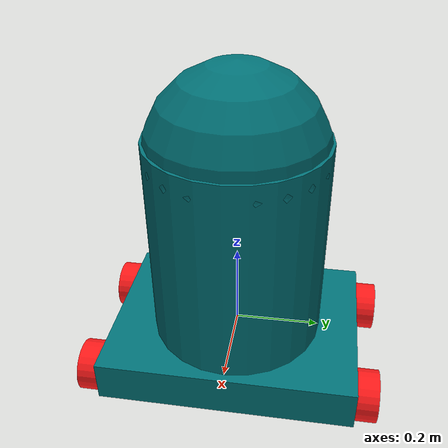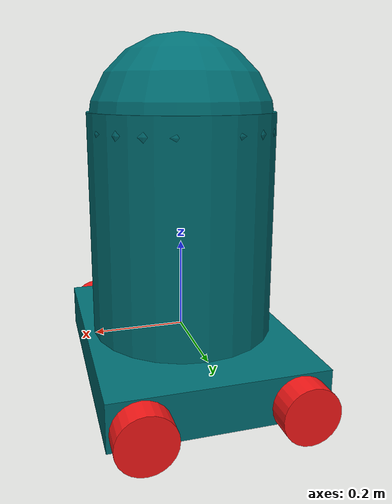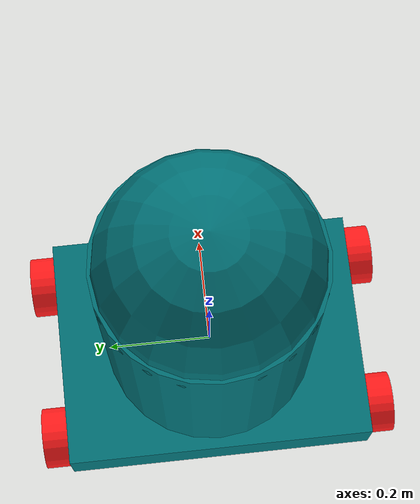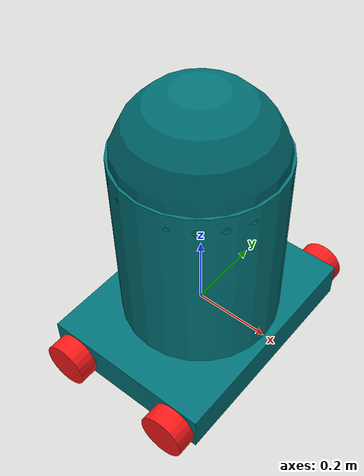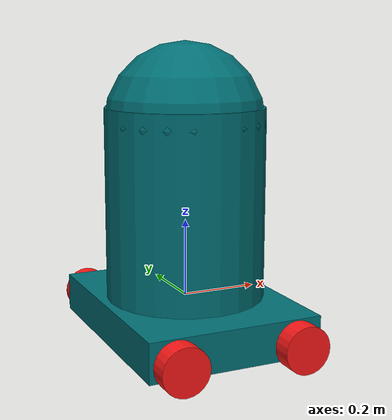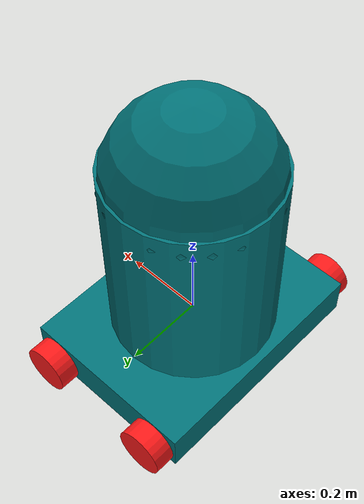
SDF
<?xml version='1.0'?>
<sdf version='1.7'>
  <model name='secondrobot'>
    <model name='robot_ozone'>
      <link name='link_0'>
        <inertial>
          <mass>1</mass>
          <inertia>
            <ixx>0.145833</ixx>
            <ixy>0</ixy>
            <ixz>0</ixz>
            <iyy>0.145833</iyy>
            <iyz>0</iyz>
            <izz>0.125</izz>
          </inertia>
          <pose>0 0 0 0 -0 0</pose>
        </inertial>
        <pose>0.158652 0.325006 -0.061319 0 -0 0</pose>
        <gravity>1</gravity>
        <self_collide>0</self_collide>
        <kinematic>0</kinematic>
        <enable_wind>0</enable_wind>
        <visual name='visual'>
          <pose>0 0 0 1.5707 -0 0</pose>
          <geometry>
            <cylinder>
              <radius>0.06</radius>
              <length>0.05</length>
            </cylinder>
          </geometry>
          <material>
            <lighting>1</lighting>
            <script>
              <uri>file://media/materials/scripts/gazebo.material</uri>
              <name>Gazebo/Grey</name>
            </script>
            <shader type='pixel'>
              <normal_map>__default__</normal_map>
            </shader>
            <ambient>1 0.1 0.1 1</ambient>
            <diffuse>0.7 0.7 0.7 1</diffuse>
            <specular>0.01 0.01 0.01 1</specular>
            <emissive>0 0 0 1</emissive>
          </material>
          <transparency>0</transparency>
          <cast_shadows>1</cast_shadows>
        </visual>
        <collision name='collision'>
          <laser_retro>0</laser_retro>
          <max_contacts>10</max_contacts>
          <pose>0 0 0 1.5707 -0 0</pose>
          <geometry>
            <cylinder>
              <radius>0.06</radius>
              <length>0.05</length>
            </cylinder>
          </geometry>
          <surface>
            <friction>
              <ode>
                <mu>1</mu>
                <mu2>1</mu2>
                <fdir1>0 0 0</fdir1>
                <slip1>0</slip1>
                <slip2>0</slip2>
              </ode>
              <torsional>
                <coefficient>1</coefficient>
                <patch_radius>0</patch_radius>
                <surface_radius>0</surface_radius>
                <use_patch_radius>1</use_patch_radius>
                <ode>
                  <slip>0</slip>
                </ode>
              </torsional>
            </friction>
            <bounce>
              <restitution_coefficient>0</restitution_coefficient>
              <threshold>1e+06</threshold>
            </bounce>
            <contact>
              <collide_without_contact>0</collide_without_contact>
              <collide_without_contact_bitmask>1</collide_without_contact_bitmask>
              <collide_bitmask>1</collide_bitmask>
              <ode>
                <soft_cfm>0</soft_cfm>
                <soft_erp>0.2</soft_erp>
                <kp>1e+13</kp>
                <kd>1</kd>
                <max_vel>0.01</max_vel>
                <min_depth>0</min_depth>
              </ode>
              <bullet>
                <split_impulse>1</split_impulse>
                <split_impulse_penetration_threshold>-0.01</split_impulse_penetration_threshold>
                <soft_cfm>0</soft_cfm>
                <soft_erp>0.2</soft_erp>
                <kp>1e+13</kp>
                <kd>1</kd>
              </bullet>
            </contact>
          </surface>
        </collision>
      </link>
      <link name='link_0_clone'>
        <inertial>
          <mass>1</mass>
          <inertia>
            <ixx>0.145833</ixx>
            <ixy>0</ixy>
            <ixz>0</ixz>
            <iyy>0.145833</iyy>
            <iyz>0</iyz>
            <izz>0.125</izz>
          </inertia>
          <pose>0 0 0 0 -0 0</pose>
        </inertial>
        <pose>-0.159423 0.325006 -0.061319 0 -0 0</pose>
        <gravity>1</gravity>
        <self_collide>0</self_collide>
        <kinematic>0</kinematic>
        <enable_wind>0</enable_wind>
        <visual name='visual'>
          <pose>0 0 0 1.5707 -0 0</pose>
          <geometry>
            <cylinder>
              <radius>0.06</radius>
              <length>0.05</length>
            </cylinder>
          </geometry>
          <material>
            <lighting>1</lighting>
            <script>
              <uri>file://media/materials/scripts/gazebo.material</uri>
              <name>Gazebo/Grey</name>
            </script>
            <shader type='pixel'>
              <normal_map>__default__</normal_map>
            </shader>
            <ambient>1 0.1 0.1 1</ambient>
            <diffuse>0.7 0.7 0.7 1</diffuse>
            <specular>0.01 0.01 0.01 1</specular>
            <emissive>0 0 0 1</emissive>
          </material>
          <transparency>0</transparency>
          <cast_shadows>1</cast_shadows>
        </visual>
        <collision name='collision'>
          <laser_retro>0</laser_retro>
          <max_contacts>10</max_contacts>
          <pose>0 0 0 1.5707 -0 0</pose>
          <geometry>
            <cylinder>
              <radius>0.06</radius>
              <length>0.05</length>
            </cylinder>
          </geometry>
          <surface>
            <friction>
              <ode>
                <mu>1</mu>
                <mu2>1</mu2>
                <fdir1>0 0 0</fdir1>
                <slip1>0</slip1>
                <slip2>0</slip2>
              </ode>
              <torsional>
                <coefficient>1</coefficient>
                <patch_radius>0</patch_radius>
                <surface_radius>0</surface_radius>
                <use_patch_radius>1</use_patch_radius>
                <ode>
                  <slip>0</slip>
                </ode>
              </torsional>
            </friction>
            <bounce>
              <restitution_coefficient>0</restitution_coefficient>
              <threshold>1e+06</threshold>
            </bounce>
            <contact>
              <collide_without_contact>0</collide_without_contact>
              <collide_without_contact_bitmask>1</collide_without_contact_bitmask>
              <collide_bitmask>1</collide_bitmask>
              <ode>
                <soft_cfm>0</soft_cfm>
                <soft_erp>0.2</soft_erp>
                <kp>1e+13</kp>
                <kd>1</kd>
                <max_vel>0.01</max_vel>
                <min_depth>0</min_depth>
              </ode>
              <bullet>
                <split_impulse>1</split_impulse>
                <split_impulse_penetration_threshold>-0.01</split_impulse_penetration_threshold>
                <soft_cfm>0</soft_cfm>
                <soft_erp>0.2</soft_erp>
                <kp>1e+13</kp>
                <kd>1</kd>
              </bullet>
            </contact>
          </surface>
        </collision>
      </link>
      <link name='link_0_clone_0'>
        <inertial>
          <mass>1</mass>
          <inertia>
            <ixx>0.145833</ixx>
            <ixy>0</ixy>
            <ixz>0</ixz>
            <iyy>0.145833</iyy>
            <iyz>0</iyz>
            <izz>0.125</izz>
          </inertia>
          <pose>0 0 0 0 -0 0</pose>
        </inertial>
        <pose>0.159453 -0.325006 -0.061319 0 -0 0</pose>
        <gravity>1</gravity>
        <self_collide>0</self_collide>
        <kinematic>0</kinematic>
        <enable_wind>0</enable_wind>
        <visual name='visual'>
          <pose>0 0 0 1.5707 -0 0</pose>
          <geometry>
            <cylinder>
              <radius>0.06</radius>
              <length>0.05</length>
            </cylinder>
          </geometry>
          <material>
            <lighting>1</lighting>
            <script>
              <uri>file://media/materials/scripts/gazebo.material</uri>
              <name>Gazebo/Grey</name>
            </script>
            <shader type='pixel'>
              <normal_map>__default__</normal_map>
            </shader>
            <ambient>1 0.1 0.1 1</ambient>
            <diffuse>0.7 0.7 0.7 1</diffuse>
            <specular>0.01 0.01 0.01 1</specular>
            <emissive>0 0 0 1</emissive>
          </material>
          <transparency>0</transparency>
          <cast_shadows>1</cast_shadows>
        </visual>
        <collision name='collision'>
          <laser_retro>0</laser_retro>
          <max_contacts>10</max_contacts>
          <pose>0 0 0 1.5707 -0 0</pose>
          <geometry>
            <cylinder>
              <radius>0.06</radius>
              <length>0.05</length>
            </cylinder>
          </geometry>
          <surface>
            <friction>
              <ode>
                <mu>1</mu>
                <mu2>1</mu2>
                <fdir1>0 0 0</fdir1>
                <slip1>0</slip1>
                <slip2>0</slip2>
              </ode>
              <torsional>
                <coefficient>1</coefficient>
                <patch_radius>0</patch_radius>
                <surface_radius>0</surface_radius>
                <use_patch_radius>1</use_patch_radius>
                <ode>
                  <slip>0</slip>
                </ode>
              </torsional>
            </friction>
            <bounce>
              <restitution_coefficient>0</restitution_coefficient>
              <threshold>1e+06</threshold>
            </bounce>
            <contact>
              <collide_without_contact>0</collide_without_contact>
              <collide_without_contact_bitmask>1</collide_without_contact_bitmask>
              <collide_bitmask>1</collide_bitmask>
              <ode>
                <soft_cfm>0</soft_cfm>
                <soft_erp>0.2</soft_erp>
                <kp>1e+13</kp>
                <kd>1</kd>
                <max_vel>0.01</max_vel>
                <min_depth>0</min_depth>
              </ode>
              <bullet>
                <split_impulse>1</split_impulse>
                <split_impulse_penetration_threshold>-0.01</split_impulse_penetration_threshold>
                <soft_cfm>0</soft_cfm>
                <soft_erp>0.2</soft_erp>
                <kp>1e+13</kp>
                <kd>1</kd>
              </bullet>
            </contact>
          </surface>
        </collision>
      </link>
      <link name='link_0_clone_1'>
        <inertial>
          <mass>1</mass>
          <inertia>
            <ixx>0.145833</ixx>
            <ixy>0</ixy>
            <ixz>0</ixz>
            <iyy>0.145833</iyy>
            <iyz>0</iyz>
            <izz>0.125</izz>
          </inertia>
          <pose>0 0 0 0 -0 0</pose>
        </inertial>
        <pose>-0.156109 -0.325006 -0.061319 0 -0 0</pose>
        <gravity>1</gravity>
        <self_collide>0</self_collide>
        <kinematic>0</kinematic>
        <enable_wind>0</enable_wind>
        <visual name='visual'>
          <pose>0 0 0 1.5707 -0 0</pose>
          <geometry>
            <cylinder>
              <radius>0.06</radius>
              <length>0.05</length>
            </cylinder>
          </geometry>
          <material>
            <lighting>1</lighting>
            <script>
              <uri>file://media/materials/scripts/gazebo.material</uri>
              <name>Gazebo/Grey</name>
            </script>
            <shader type='pixel'>
              <normal_map>__default__</normal_map>
            </shader>
            <ambient>1 0.1 0.1 1</ambient>
            <diffuse>0.7 0.7 0.7 1</diffuse>
            <specular>0.01 0.01 0.01 1</specular>
            <emissive>0 0 0 1</emissive>
          </material>
          <transparency>0</transparency>
          <cast_shadows>1</cast_shadows>
        </visual>
        <collision name='collision'>
          <laser_retro>0</laser_retro>
          <max_contacts>10</max_contacts>
          <pose>0 0 0 1.5707 -0 0</pose>
          <geometry>
            <cylinder>
              <radius>0.06</radius>
              <length>0.05</length>
            </cylinder>
          </geometry>
          <surface>
            <friction>
              <ode>
                <mu>1</mu>
                <mu2>1</mu2>
                <fdir1>0 0 0</fdir1>
                <slip1>0</slip1>
                <slip2>0</slip2>
              </ode>
              <torsional>
                <coefficient>1</coefficient>
                <patch_radius>0</patch_radius>
                <surface_radius>0</surface_radius>
                <use_patch_radius>1</use_patch_radius>
                <ode>
                  <slip>0</slip>
                </ode>
              </torsional>
            </friction>
            <bounce>
              <restitution_coefficient>0</restitution_coefficient>
              <threshold>1e+06</threshold>
            </bounce>
            <contact>
              <collide_without_contact>0</collide_without_contact>
              <collide_without_contact_bitmask>1</collide_without_contact_bitmask>
              <collide_bitmask>1</collide_bitmask>
              <ode>
                <soft_cfm>0</soft_cfm>
                <soft_erp>0.2</soft_erp>
                <kp>1e+13</kp>
                <kd>1</kd>
                <max_vel>0.01</max_vel>
                <min_depth>0</min_depth>
              </ode>
              <bullet>
                <split_impulse>1</split_impulse>
                <split_impulse_penetration_threshold>-0.01</split_impulse_penetration_threshold>
                <soft_cfm>0</soft_cfm>
                <soft_erp>0.2</soft_erp>
                <kp>1e+13</kp>
                <kd>1</kd>
              </bullet>
            </contact>
          </surface>
        </collision>
      </link>
      <link name='link_1'>
        <inertial>
          <mass>1</mass>
          <inertia>
            <ixx>0.145833</ixx>
            <ixy>0</ixy>
            <ixz>0</ixz>
            <iyy>0.145833</iyy>
            <iyz>0</iyz>
            <izz>0.125</izz>
          </inertia>
          <pose>0 0 0 0 -0 0</pose>
        </inertial>
        <pose>-0.000857 -0 0.341759 0 -0 0</pose>
        <gravity>1</gravity>
        <self_collide>0</self_collide>
        <kinematic>0</kinematic>
        <enable_wind>0</enable_wind>
        <visual name='visual'>
          <pose>0 0 -0.1 0 -0 0</pose>
          <geometry>
            <cylinder>
              <radius>0.205</radius>
              <length>0.5</length>
            </cylinder>
          </geometry>
          <material>
            <lighting>1</lighting>
            <script>
              <uri>file://media/materials/scripts/gazebo.material</uri>
              <name>Gazebo/Grey</name>
            </script>
            <shader type='pixel'>
              <normal_map>__default__</normal_map>
            </shader>
            <ambient>0 0.45 0.47 1</ambient>
            <diffuse>0.7 0.7 0.7 1</diffuse>
            <specular>0.01 0.01 0.01 1</specular>
            <emissive>0 0 0 1</emissive>
          </material>
          <transparency>0</transparency>
          <cast_shadows>1</cast_shadows>
        </visual>
        <collision name='collision'>
          <laser_retro>0</laser_retro>
          <max_contacts>10</max_contacts>
          <pose>0 0 -0.1 0 -0 0</pose>
          <geometry>
            <cylinder>
              <radius>0.205</radius>
              <length>0.5</length>
            </cylinder>
          </geometry>
          <surface>
            <friction>
              <ode>
                <mu>1</mu>
                <mu2>1</mu2>
                <fdir1>0 0 0</fdir1>
                <slip1>0</slip1>
                <slip2>0</slip2>
              </ode>
              <torsional>
                <coefficient>1</coefficient>
                <patch_radius>0</patch_radius>
                <surface_radius>0</surface_radius>
                <use_patch_radius>1</use_patch_radius>
                <ode>
                  <slip>0</slip>
                </ode>
              </torsional>
            </friction>
            <bounce>
              <restitution_coefficient>0</restitution_coefficient>
              <threshold>1e+06</threshold>
            </bounce>
            <contact>
              <collide_without_contact>0</collide_without_contact>
              <collide_without_contact_bitmask>1</collide_without_contact_bitmask>
              <collide_bitmask>1</collide_bitmask>
              <ode>
                <soft_cfm>0</soft_cfm>
                <soft_erp>0.2</soft_erp>
                <kp>1e+13</kp>
                <kd>1</kd>
                <max_vel>0.01</max_vel>
                <min_depth>0</min_depth>
              </ode>
              <bullet>
                <split_impulse>1</split_impulse>
                <split_impulse_penetration_threshold>-0.01</split_impulse_penetration_threshold>
                <soft_cfm>0</soft_cfm>
                <soft_erp>0.2</soft_erp>
                <kp>1e+13</kp>
                <kd>1</kd>
              </bullet>
            </contact>
          </surface>
        </collision>
      </link>
      <link name='link_2'>
        <inertial>
          <mass>1</mass>
          <inertia>
            <ixx>0.1</ixx>
            <ixy>0</ixy>
            <ixz>0</ixz>
            <iyy>0.1</iyy>
            <iyz>0</iyz>
            <izz>0.1</izz>
          </inertia>
          <pose>0 0 0 0 -0 0</pose>
        </inertial>
        <pose>-0.000857 -0 -0.048241 0 -0 0</pose>
        <gravity>1</gravity>
        <self_collide>0</self_collide>
        <kinematic>0</kinematic>
        <enable_wind>0</enable_wind>
        <visual name='visual'>
          <pose>0 0 0.5 0 -0 0</pose>
          <geometry>
            <sphere>
              <radius>0.205</radius>
            </sphere>
          </geometry>
          <material>
            <lighting>1</lighting>
            <script>
              <uri>file://media/materials/scripts/gazebo.material</uri>
              <name>Gazebo/Grey</name>
            </script>
            <shader type='pixel'>
              <normal_map>__default__</normal_map>
            </shader>
            <emissive>0 0 0 1</emissive>
            <ambient>0 0.45 0.47 1</ambient>
            <diffuse>0.7 0.7 0.7 1</diffuse>
            <specular>0.01 0.01 0.01 1</specular>
          </material>
          <transparency>0</transparency>
          <cast_shadows>1</cast_shadows>
        </visual>
        <collision name='collision'>
          <laser_retro>0</laser_retro>
          <max_contacts>10</max_contacts>
          <pose>0 0 0.5 0 -0 0</pose>
          <geometry>
            <sphere>
              <radius>0.205</radius>
            </sphere>
          </geometry>
          <surface>
            <friction>
              <ode>
                <mu>1</mu>
                <mu2>1</mu2>
                <fdir1>0 0 0</fdir1>
                <slip1>0</slip1>
                <slip2>0</slip2>
              </ode>
              <torsional>
                <coefficient>1</coefficient>
                <patch_radius>0</patch_radius>
                <surface_radius>0</surface_radius>
                <use_patch_radius>1</use_patch_radius>
                <ode>
                  <slip>0</slip>
                </ode>
              </torsional>
            </friction>
            <bounce>
              <restitution_coefficient>0</restitution_coefficient>
              <threshold>1e+06</threshold>
            </bounce>
            <contact>
              <collide_without_contact>0</collide_without_contact>
              <collide_without_contact_bitmask>1</collide_without_contact_bitmask>
              <collide_bitmask>1</collide_bitmask>
              <ode>
                <soft_cfm>0</soft_cfm>
                <soft_erp>0.2</soft_erp>
                <kp>1e+13</kp>
                <kd>1</kd>
                <max_vel>0.01</max_vel>
                <min_depth>0</min_depth>
              </ode>
              <bullet>
                <split_impulse>1</split_impulse>
                <split_impulse_penetration_threshold>-0.01</split_impulse_penetration_threshold>
                <soft_cfm>0</soft_cfm>
                <soft_erp>0.2</soft_erp>
                <kp>1e+13</kp>
                <kd>1</kd>
              </bullet>
            </contact>
          </surface>
        </collision>
      </link>
      <link name='link_3'>
        <inertial>
          <mass>1</mass>
          <inertia>
            <ixx>0.166667</ixx>
            <ixy>0</ixy>
            <ixz>0</ixz>
            <iyy>0.166667</iyy>
            <iyz>0</iyz>
            <izz>0.166667</izz>
          </inertia>
          <pose>0 0 0 0 -0 0</pose>
        </inertial>
        <pose>-0.000857 -0 -0.048241 0 -0 0</pose>
        <gravity>1</gravity>
        <self_collide>0</self_collide>
        <kinematic>0</kinematic>
        <enable_wind>0</enable_wind>
        <visual name='visual'>
          <pose>0 0 0 0 -0 0</pose>
          <geometry>
            <box>
              <size>0.45 0.6 0.1</size>
            </box>
          </geometry>
          <material>
            <lighting>1</lighting>
            <script>
              <uri>file://media/materials/scripts/gazebo.material</uri>
              <name>Gazebo/Grey</name>
            </script>
            <shader type='pixel'>
              <normal_map>__default__</normal_map>
            </shader>
            <ambient>0 0.45 0.47 1</ambient>
            <diffuse>0.7 0.7 0.7 1</diffuse>
            <specular>0.01 0.01 0.01 1</specular>
            <emissive>0 0 0 1</emissive>
          </material>
          <transparency>0</transparency>
          <cast_shadows>1</cast_shadows>
        </visual>
        <collision name='collision'>
          <laser_retro>0</laser_retro>
          <max_contacts>10</max_contacts>
          <pose>0 0 0 0 -0 0</pose>
          <geometry>
            <box>
              <size>0.45 0.6 0.1</size>
            </box>
          </geometry>
          <surface>
            <friction>
              <ode>
                <mu>1</mu>
                <mu2>1</mu2>
                <fdir1>0 0 0</fdir1>
                <slip1>0</slip1>
                <slip2>0</slip2>
              </ode>
              <torsional>
                <coefficient>1</coefficient>
                <patch_radius>0</patch_radius>
                <surface_radius>0</surface_radius>
                <use_patch_radius>1</use_patch_radius>
                <ode>
                  <slip>0</slip>
                </ode>
              </torsional>
            </friction>
            <bounce>
              <restitution_coefficient>0</restitution_coefficient>
              <threshold>1e+06</threshold>
            </bounce>
            <contact>
              <collide_without_contact>0</collide_without_contact>
              <collide_without_contact_bitmask>1</collide_without_contact_bitmask>
              <collide_bitmask>1</collide_bitmask>
              <ode>
                <soft_cfm>0</soft_cfm>
                <soft_erp>0.2</soft_erp>
                <kp>1e+13</kp>
                <kd>1</kd>
                <max_vel>0.01</max_vel>
                <min_depth>0</min_depth>
              </ode>
              <bullet>
                <split_impulse>1</split_impulse>
                <split_impulse_penetration_threshold>-0.01</split_impulse_penetration_threshold>
                <soft_cfm>0</soft_cfm>
                <soft_erp>0.2</soft_erp>
                <kp>1e+13</kp>
                <kd>1</kd>
              </bullet>
            </contact>
          </surface>
        </collision>
      </link>
      <joint name='link_1_JOINT_2' type='fixed'>
        <parent>link_1</parent>
        <child>link_2</child>
        <pose>0 0 0 0 -0 0</pose>
        <physics>
          <ode>
            <limit>
              <cfm>0</cfm>
              <erp>0.2</erp>
            </limit>
            <suspension>
              <cfm>0</cfm>
              <erp>0.2</erp>
            </suspension>
          </ode>
        </physics>
      </joint>
      <joint name='link_3_JOINT_0' type='fixed'>
        <parent>link_3</parent>
        <child>link_1</child>
        <pose>0 0 0 0 -0 0</pose>
        <physics>
          <ode>
            <limit>
              <cfm>0</cfm>
              <erp>0.2</erp>
            </limit>
            <suspension>
              <cfm>0</cfm>
              <erp>0.2</erp>
            </suspension>
          </ode>
        </physics>
      </joint>
      <joint name='link_3_JOINT_3' type='revolute'>
        <parent>link_3</parent>
        <child>link_0</child>
        <pose>0 0 0 0 -0 0</pose>
        <axis>
          <xyz>0 1 0</xyz>
          <limit>
            <lower>-1.79769e+308</lower>
            <upper>1.79769e+308</upper>
            <effort>-1</effort>
            <velocity>-1</velocity>
          </limit>
          <dynamics>
            <spring_reference>0</spring_reference>
            <spring_stiffness>0</spring_stiffness>
            <damping>0</damping>
            <friction>0</friction>
          </dynamics>
        </axis>
        <physics>
          <ode>
            <limit>
              <cfm>0</cfm>
              <erp>0.2</erp>
            </limit>
            <suspension>
              <cfm>0</cfm>
              <erp>0.2</erp>
            </suspension>
          </ode>
        </physics>
      </joint>
      <joint name='link_3_JOINT_4' type='revolute'>
        <parent>link_3</parent>
        <child>link_0_clone</child>
        <pose>0 0 0 0 -0 0</pose>
        <axis>
          <xyz>0 1 0</xyz>
          <limit>
            <lower>-1.79769e+308</lower>
            <upper>1.79769e+308</upper>
            <effort>-1</effort>
            <velocity>-1</velocity>
          </limit>
          <dynamics>
            <spring_reference>0</spring_reference>
            <spring_stiffness>0</spring_stiffness>
            <damping>0</damping>
          </dynamics>
        </axis>
        <physics>
          <ode>
            <limit>
              <cfm>0</cfm>
              <erp>0.2</erp>
            </limit>
            <suspension>
              <cfm>0</cfm>
              <erp>0.2</erp>
            </suspension>
          </ode>
        </physics>
      </joint>
      <joint name='link_3_JOINT_5' type='revolute'>
        <parent>link_3</parent>
        <child>link_0_clone_1</child>
        <pose>0 0 0 0 -0 0</pose>
        <axis>
          <xyz>0 1 0</xyz>
          <limit>
            <lower>-1.79769e+308</lower>
            <upper>1.79769e+308</upper>
            <effort>-1</effort>
            <velocity>-1</velocity>
          </limit>
          <dynamics>
            <spring_reference>0</spring_reference>
            <spring_stiffness>0</spring_stiffness>
            <damping>0</damping>
          </dynamics>
        </axis>
        <physics>
          <ode>
            <limit>
              <cfm>0</cfm>
              <erp>0.2</erp>
            </limit>
            <suspension>
              <cfm>0</cfm>
              <erp>0.2</erp>
            </suspension>
          </ode>
        </physics>
      </joint>
      <joint name='link_3_JOINT_6' type='revolute'>
        <parent>link_3</parent>
        <child>link_0_clone_0</child>
        <pose>0 0 0 0 -0 0</pose>
        <axis>
          <xyz>0 1 0</xyz>
          <limit>
            <lower>-1.79769e+308</lower>
            <upper>1.79769e+308</upper>
            <effort>-1</effort>
            <velocity>-1</velocity>
          </limit>
          <dynamics>
            <spring_reference>0</spring_reference>
            <spring_stiffness>0</spring_stiffness>
            <damping>0</damping>
          </dynamics>
        </axis>
        <physics>
          <ode>
            <limit>
              <cfm>0</cfm>
              <erp>0.2</erp>
            </limit>
            <suspension>
              <cfm>0</cfm>
              <erp>0.2</erp>
            </suspension>
          </ode>
        </physics>
      </joint>
      <static>0</static>
      <allow_auto_disable>1</allow_auto_disable>
      <pose>0 -0 0 0 -0 0</pose>
    </model>
    <static>0</static>
    <allow_auto_disable>1</allow_auto_disable>
  </model>
</sdf>
